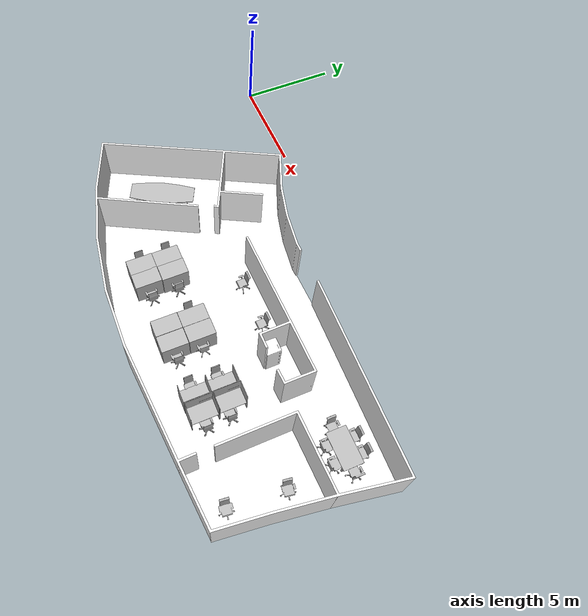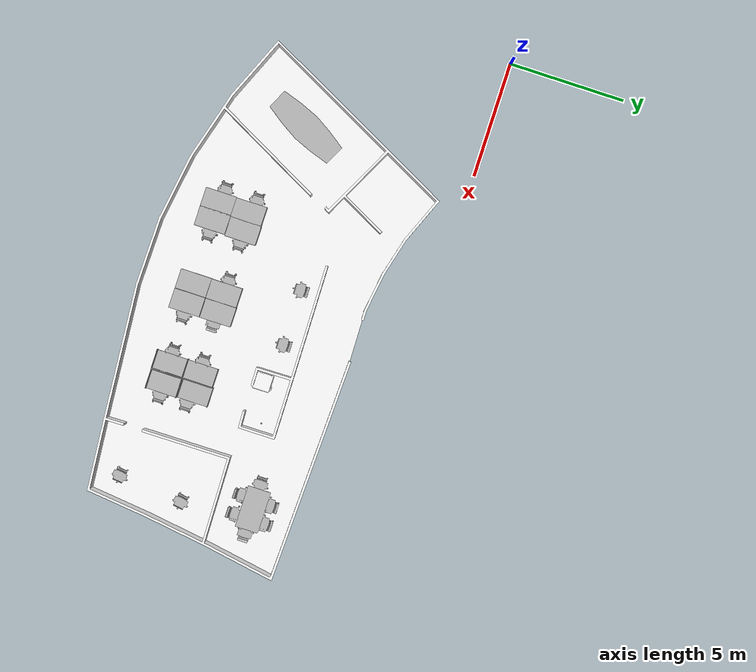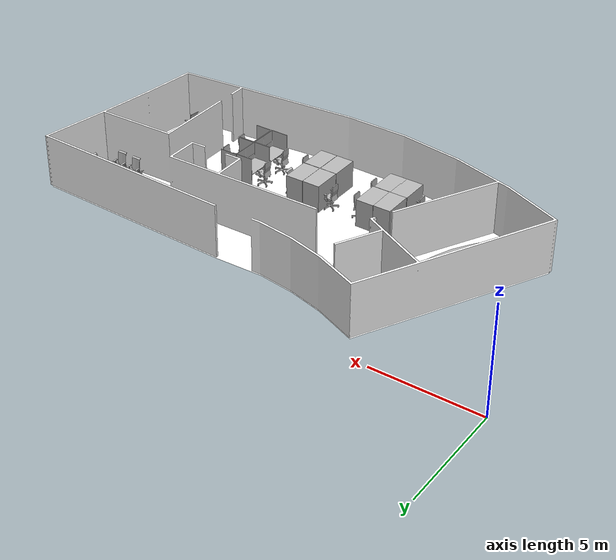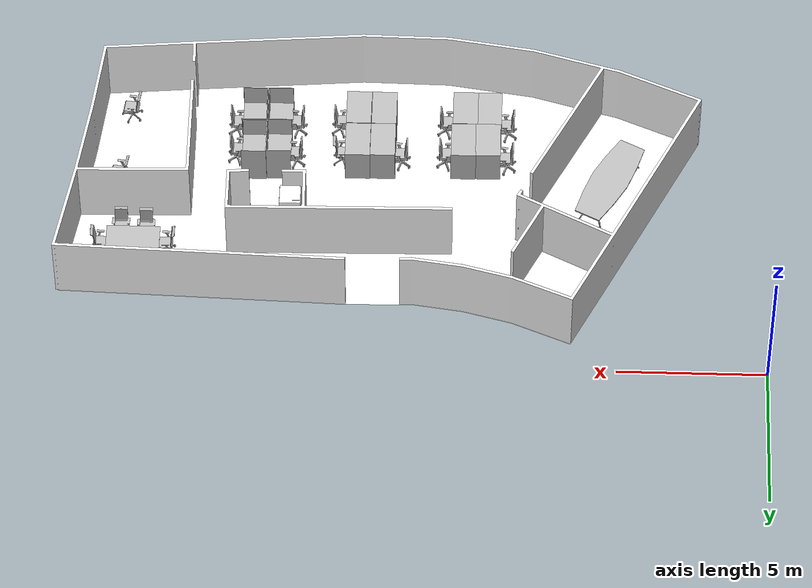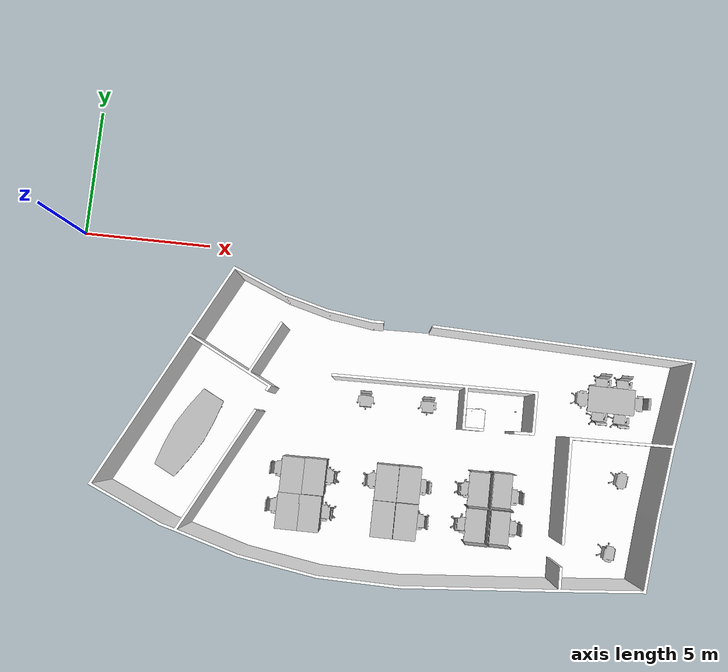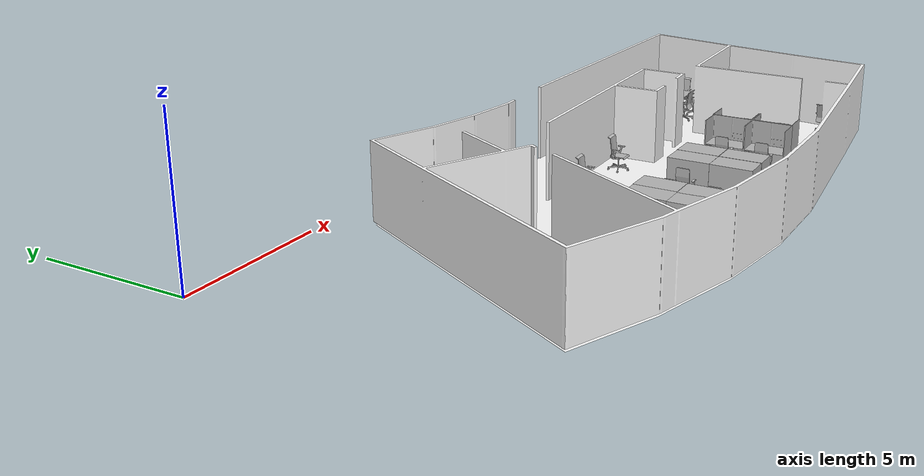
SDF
<sdf version="1.6">
 <world name="world">
  <scene><ambient>0.8 0.8 0.8 1.0</ambient><background>0 0 0</background><grid>false</grid></scene>
  <include><uri>model://sun</uri></include>
  <include>
   <name>Fridge</name>
   <uri>model://Fridge</uri>
   <pose>15.988145328136557 -5.750839262070037 0 0 0 1.5708</pose>
   <static>True</static>
  </include>
  <include>
   <name>OfficeChairGrey</name>
   <uri>model://OfficeChairGrey</uri>
   <pose>14.25575798385424 -5.546939351620108 0 0 0 0.0166</pose>
   <static>True</static>
  </include>
  <include>
   <name>SmallCubicle</name>
   <uri>model://SmallCubicle</uri>
   <pose>10.225911509914997 -8.526615785243605 0 0 0 1.5708</pose>
   <static>True</static>
  </include>
  <include>
   <name>SmallCubicle_2</name>
   <uri>model://SmallCubicle</uri>
   <pose>10.183296208528093 -9.890381619078704 0 0 0 1.5708</pose>
   <static>True</static>
  </include>
  <include>
   <name>SmallCubicle_3</name>
   <uri>model://SmallCubicle</uri>
   <pose>13.810743847321321 -9.831106223705028 0 0 0 1.5708</pose>
   <static>True</static>
  </include>
  <include>
   <name>SmallCubicle_4</name>
   <uri>model://SmallCubicle</uri>
   <pose>9.391493072925952 -8.541963727519024 0 0 0 -1.5708</pose>
   <static>True</static>
  </include>
  <include>
   <name>SmallCubicle_5</name>
   <uri>model://SmallCubicle</uri>
   <pose>9.36992299189023 -9.890178447200816 0 0 0 4.7124</pose>
   <static>True</static>
  </include>
  <include>
   <name>SmallCubicle_6</name>
   <uri>model://SmallCubicle</uri>
   <pose>12.9440464782329 -9.827406802428492 0 0 0 4.7124</pose>
   <static>True</static>
  </include>
  <include>
   <name>SmallCubicle_7</name>
   <uri>model://SmallCubicle</uri>
   <pose>12.955153207557416 -8.471810171183453 0 0 0 -1.5708</pose>
   <static>True</static>
  </include>
  <include>
   <name>SmallCubicle_8</name>
   <uri>model://SmallCubicle</uri>
   <pose>13.810743847321321 -8.460694976364024 0 0 0 1.5708</pose>
   <static>True</static>
  </include>
  <include>
   <name>BigCubicle</name>
   <uri>model://BigCubicle</uri>
   <pose>17.319691488336666 -8.342677511796122 0 0 0 1.5708</pose>
   <static>True</static>
  </include>
  <include>
   <name>BigCubicle_2</name>
   <uri>model://BigCubicle</uri>
   <pose>17.350328114423117 -9.715696131570017 0 0 0 1.5708</pose>
   <static>True</static>
  </include>
  <include>
   <name>BigCubicle_3</name>
   <uri>model://BigCubicle</uri>
   <pose>16.480625494640943 -9.730028214455997 0 0 0 -1.5708</pose>
   <static>True</static>
  </include>
  <include>
   <name>BigCubicle_4</name>
   <uri>model://BigCubicle</uri>
   <pose>16.48540849926621 -8.382482268872248 0 0 0 -1.5708</pose>
   <static>True</static>
  </include>
  <include>
   <name>OfficeChairGrey_2</name>
   <uri>model://OfficeChairGrey</uri>
   <pose>20.8759104529405 -3.9703171137182056 0 0 0 0.0</pose>
   <static>True</static>
  </include>
  <include>
   <name>OfficeChairGrey_3</name>
   <uri>model://OfficeChairGrey</uri>
   <pose>21.680132469578517 -3.9703171137182056 0 0 0 0.0</pose>
   <static>True</static>
  </include>
  <include>
   <name>OfficeChairGrey_4</name>
   <uri>model://OfficeChairGrey</uri>
   <pose>22.188062164297264 -4.512108788084869 0 0 0 -1.5708</pose>
   <static>True</static>
  </include>
  <include>
   <name>OfficeChairGrey_5</name>
   <uri>model://OfficeChairGrey</uri>
   <pose>21.66320147975456 -5.07083145227549 0 0 0 3.1416</pose>
   <static>True</static>
  </include>
  <include>
   <name>OfficeChairGrey_6</name>
   <uri>model://OfficeChairGrey</uri>
   <pose>20.816651988556647 -5.036969472627574 0 0 0 3.1416</pose>
   <static>True</static>
  </include>
  <include>
   <name>OfficeChairGrey_7</name>
   <uri>model://OfficeChairGrey</uri>
   <pose>20.257929324366025 -4.529039777908827 0 0 0 1.5708</pose>
   <static>True</static>
  </include>
  <include>
   <name>OfficeChairGrey_8</name>
   <uri>model://OfficeChairGrey</uri>
   <pose>14.205616857490586 -8.518074100877419 0 0 0 -1.5708</pose>
   <static>True</static>
  </include>
  <include>
   <name>OfficeChairGrey_9</name>
   <uri>model://OfficeChairGrey</uri>
   <pose>21.993355781321743 -7.517359481837455 0 0 0 1.419</pose>
   <static>True</static>
  </include>
  <include>
   <name>OfficeChairGrey_10</name>
   <uri>model://OfficeChairGrey</uri>
   <pose>21.731416437755286 -10.29278045422472 0 0 0 1.4599</pose>
   <static>True</static>
  </include>
  <include>
   <name>OfficeChairBlue</name>
   <uri>model://OfficeChairBlue</uri>
   <pose>8.867969936579339 -8.374719410037965 0 0 0 1.5708</pose>
   <static>True</static>
  </include>
  <include>
   <name>OfficeChairBlue_2</name>
   <uri>model://OfficeChairBlue</uri>
   <pose>8.853637853693357 -9.784393622780726 0 0 0 1.5708</pose>
   <static>True</static>
  </include>
  <include>
   <name>OfficeChairBlue_3</name>
   <uri>model://OfficeChairBlue</uri>
   <pose>10.702933682710107 -8.503742017991438 0 0 0 4.7124</pose>
   <static>True</static>
  </include>
  <include>
   <name>OfficeChairBlue_4</name>
   <uri>model://OfficeChairBlue</uri>
   <pose>10.698159143579753 -9.870411516581347 0 0 0 4.7124</pose>
   <static>True</static>
  </include>
  <include>
   <name>OfficeChairBlue_5</name>
   <uri>model://OfficeChairBlue</uri>
   <pose>12.456662539665526 -8.470294847594209 0 0 0 1.5708</pose>
   <static>True</static>
  </include>
  <include>
   <name>OfficeChairBlue_6</name>
   <uri>model://OfficeChairBlue</uri>
   <pose>14.310741373307545 -9.832181341558849 0 0 0 -1.5708</pose>
   <static>True</static>
  </include>
  <include>
   <name>OfficeChairBlue_7</name>
   <uri>model://OfficeChairBlue</uri>
   <pose>16.02188879085571 -9.773041394103762 0 0 0 1.5708</pose>
   <static>True</static>
  </include>
  <include>
   <name>OfficeChairBlue_8</name>
   <uri>model://OfficeChairBlue</uri>
   <pose>16.041003878366954 -8.435044526780727 0 0 0 1.5708</pose>
   <static>True</static>
  </include>
  <include>
   <name>OfficeChairBlue_9</name>
   <uri>model://OfficeChairBlue</uri>
   <pose>17.804290279077996 -8.544952047222951 0 0 0 -1.5708</pose>
   <static>True</static>
  </include>
  <include>
   <name>OfficeChairBlue_10</name>
   <uri>model://OfficeChairBlue</uri>
   <pose>17.83296291034487 -9.72525367532564 0 0 0 -1.5708</pose>
   <static>True</static>
  </include>
  <include>
   <name>OfficeChairGrey_11</name>
   <uri>model://OfficeChairGrey</uri>
   <pose>11.842888762062305 -5.564640701481056 0 0 0 0.016</pose>
   <static>True</static>
  </include>
  <include>
   <name>ConfTable</name>
   <uri>model://ConfTable</uri>
   <pose>5.248606845427052 -7.381911563245789 0 0 0 1.1017</pose>
   <static>True</static>
  </include>
  <include>
   <name>RecTable</name>
   <uri>model://RecTable</uri>
   <pose>21.23146123924362 -4.50364329317289 0 0 0 0.0</pose>
   <static>True</static>
  </include>
  <include>
   <name>coke_dispenser</name>
   <uri>model://TeleportDispenser</uri>
   <pose>17.704388973621732 -5.289418996397703 0 0 0 1.5708</pose>
   <static>True</static>
  </include>
  <include>
   <name>Coke</name>
   <uri>model://Coke</uri>
   <pose>17.704388973621732 -5.291535370125699 0 0 0 1.5708</pose>
   <static>False</static>
  </include>
  <include>
   <name>coke_ingestor</name>
   <uri>model://TeleportIngestor</uri>
   <pose>22.542656349675333 -7.610446063889577 0.805 0 0 1.5708</pose>
   <static>True</static>
  </include>
  <model name="main_door">
   <pose>13.131950836046645 -2.579487092649509 0.0 0 0 -3.120269390429785</pose>
   <link name="right">
    <pose>-0.473864332736097 0 1.11 0 0 0</pose>
    <visual name="right_visual">
     <geometry><box><size>0.937728665472194 0.03 2.2</size></box></geometry>
     <material><ambient>120 60 0 0.6</ambient><diffuse>120 60 0 0.6</diffuse></material>
    </visual>
    <collision name="right_collision">
     <geometry><box><size>0.937728665472194 0.03 2.2</size></box></geometry>
     <surface><contact><collide_bitmask>0x02</collide_bitmask></contact></surface>
    </collision>
    <inertial>
     <mass>50.0</mass>
     <inertia><ixx>20.17041666666667</ixx><iyy>23.83056270853443</iyy><izz>3.6676460418677586</izz></inertia>
    </inertial>
   </link>
   <joint name="right_joint" type="revolute">
    <parent>world</parent>
    <child>right</child>
    <axis><xyz>0 0 1</xyz><limit><lower>0</lower><upper>1.57</upper></limit></axis>
    <pose>-0.473864332736097 0 0 0 0 0</pose>
   </joint>
   <link name="left">
    <pose>0.473864332736097 0 1.11 0 0 0</pose>
    <visual name="left_visual">
     <geometry><box><size>0.937728665472194 0.03 2.2</size></box></geometry>
     <material><ambient>120 60 0 0.6</ambient><diffuse>120 60 0 0.6</diffuse></material>
    </visual>
    <collision name="left_collision">
     <geometry><box><size>0.937728665472194 0.03 2.2</size></box></geometry>
     <surface><contact><collide_bitmask>0x02</collide_bitmask></contact></surface>
    </collision>
    <inertial>
     <mass>50.0</mass>
     <inertia><ixx>20.17041666666667</ixx><iyy>23.83056270853443</iyy><izz>3.6676460418677586</izz></inertia>
    </inertial>
   </link>
   <joint name="left_joint" type="revolute">
    <parent>world</parent>
    <child>left</child>
    <axis><xyz>0 0 1</xyz><limit><lower>-1.57</lower><upper>0</upper></limit></axis>
    <pose>0.473864332736097 0 0 0 0 0</pose>
   </joint>
   <plugin filename="libdoor.so" name="door">
    <v_max_door>0.5</v_max_door>
    <a_max_door>0.3</a_max_door>
    <a_nom_door>0.15</a_nom_door>
    <dx_min_door>0.01</dx_min_door>
    <f_max_door>500.0</f_max_door>
    <door left_joint_name="left_joint" name="main_door" right_joint_name="right_joint" type="DoubleSwingDoor"/>
   </plugin>
  </model>
  <model name="coe_door">
   <pose>8.077686357313898 -5.898342045416362 0.0 0 0 1.1560010438234292</pose>
   <plugin filename="libdoor.so" name="door">
    <v_max_door>0.5</v_max_door>
    <a_max_door>0.3</a_max_door>
    <a_nom_door>0.15</a_nom_door>
    <dx_min_door>0.01</dx_min_door>
    <f_max_door>500.0</f_max_door>
    <door left_joint_name="left_joint" name="coe_door" right_joint_name="empty_joint" type="SwingDoor"/>
   </plugin>
   <link name="left">
    <pose>0 0 1.11 0 0 0</pose>
    <visual name="left_visual">
     <geometry><box><size>0.8766026166317483 0.03 2.2</size></box></geometry>
     <material><ambient>120 60 0 0.6</ambient><diffuse>120 60 0 0.6</diffuse></material>
    </visual>
    <collision name="left_collision">
     <geometry><box><size>0.8766026166317483 0.03 2.2</size></box></geometry>
     <surface><contact><collide_bitmask>0x02</collide_bitmask></contact></surface>
    </collision>
    <inertial>
     <mass>50.0</mass>
     <inertia><ixx>20.17041666666667</ixx><iyy>23.36846728119012</iyy><izz>3.20555061452345</izz></inertia>
    </inertial>
   </link>
   <joint name="left_joint" type="revolute">
    <parent>world</parent>
    <child>left</child>
    <axis><xyz>0 0 1</xyz><limit><lower>-1.57</lower><upper>0</upper></limit></axis>
    <pose>0.44330130831587417 0 0 0 0 0</pose>
   </joint>
  </model>
  <model name="hardware_door">
   <pose>19.450062912168402 -10.319158936370446 0.0 0 0 -1.5760607387686447</pose>
   <plugin filename="libdoor.so" name="door">
    <v_max_door>0.5</v_max_door>
    <a_max_door>0.3</a_max_door>
    <a_nom_door>0.15</a_nom_door>
    <dx_min_door>0.01</dx_min_door>
    <f_max_door>500.0</f_max_door>
    <door left_joint_name="left_joint" name="hardware_door" right_joint_name="empty_joint" type="SwingDoor"/>
   </plugin>
   <link name="left">
    <pose>0 0 1.11 0 0 0</pose>
    <visual name="left_visual">
     <geometry><box><size>0.8792617700206885 0.03 2.2</size></box></geometry>
     <material><ambient>120 60 0 0.6</ambient><diffuse>120 60 0 0.6</diffuse></material>
    </visual>
    <collision name="left_collision">
     <geometry><box><size>0.8792617700206885 0.03 2.2</size></box></geometry>
     <surface><contact><collide_bitmask>0x02</collide_bitmask></contact></surface>
    </collision>
    <inertial>
     <mass>50.0</mass>
     <inertia><ixx>20.17041666666667</ixx><iyy>23.387921917582982</iyy><izz>3.225005250916309</izz></inertia>
    </inertial>
   </link>
   <joint name="left_joint" type="revolute">
    <parent>world</parent>
    <child>left</child>
    <axis><xyz>0 0 1</xyz><limit><lower>-1.57</lower><upper>0</upper></limit></axis>
    <pose>0.44463088501034426 0 0 0 0 0</pose>
   </joint>
  </model>
  <include><name>building_L1</name><uri>model://building_L1</uri></include>
  <plugin filename="libcrowd_simulator.so" name="crowd_simulation">
   <behavior_file>behavior_file.xml</behavior_file>
   <scene_file>scene_file.xml</scene_file>
   <update_time_step>0.1</update_time_step>
   <model_type>
    <typename>human</typename>
    <animation>walk</animation>
    <animation_speed>0.2</animation_speed>
    <initial_pose>0 0 0 0 0 0</initial_pose>
    <filename>walk.dae</filename>
   </model_type>
   <model_type>
    <typename>random_human</typename>
    <animation>walk</animation>
    <animation_speed>0.2</animation_speed>
    <initial_pose>0 0 0 0 0 0</initial_pose>
    <filename>stand.dae</filename>
   </model_type>
   <external_agent>tinyRobot2</external_agent>
   <external_agent>tinyRobot1</external_agent>
  </plugin>
 </world>
</sdf>

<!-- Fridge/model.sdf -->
<sdf version="1.6">
  <model name="Fridge">
    <static>true</static>
    <link name="base_link">
      <visual name="visual">
        <geometry>
          <mesh>
            <uri>meshes/fridge.dae</uri>
          </mesh>
        </geometry>
        <material>
          <diffuse>1.0 1.0 1.0</diffuse>
          <specular>1.0 1.0 1.0</specular>
          <pbr>
            <metal>
              <albedo_map>materials/textures/Fridge_Albedo.jpg</albedo_map>
              <normal_map>materials/textures/Fridge_Normal.png</normal_map>
              <roughness_map>materials/textures/Fridge_Roughness.jpg</roughness_map>
              <metalness_map>materials/textures/Fridge_Metalness.jpg</metalness_map>
            </metal>
          </pbr>
        </material>
      </visual>
      <collision name="Box001">
        <pose>0.0 0.0 0.867923 0.0 0.0 0.0</pose>
        <geometry>
          <box>
            <size>0.734673 0.7239 1.73585</size>
          </box>
        </geometry>
      </collision>
    </link>
  </model>
</sdf>

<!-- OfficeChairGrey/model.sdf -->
<sdf version="1.6">
  <model name="OfficeChairGrey">
   <static>true</static>
    <link name="body">
      <pose>0 0 0 0 0 0</pose>

      <visual name="visual">
        <geometry>
          <mesh>
            <uri>model://OfficeChairGrey/meshes/OfficeChairGrey.obj</uri>
          </mesh>
        </geometry>
      </visual>

      <collision name="collision">
        <geometry>
          <mesh>
            <uri>model://OfficeChairGrey/meshes/OfficeChairGrey_Col.obj</uri>
          </mesh>
        </geometry>
      </collision>

    </link>
  </model>
</sdf>

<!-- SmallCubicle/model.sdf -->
<sdf version="1.6">
  <model name="SmallCubicle">
   <static>true</static>
    <link name="body">
      <pose>0 0 0 0 0 0</pose>

      <visual name="visual">
        <geometry>
          <mesh>
            <uri>model://SmallCubicle/meshes/SmallCubicle.obj</uri>
          </mesh>
        </geometry>
      </visual>

      <collision name="collision">
        <geometry>
          <mesh>
            <uri>model://SmallCubicle/meshes/SmallCubicle_Col.obj</uri>
          </mesh>
        </geometry>
      </collision>

    </link>
  </model>
</sdf>

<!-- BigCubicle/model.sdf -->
<sdf version="1.6">
  <model name="BigCubicle">
   <static>true</static>
    <link name="body">
      <pose>0 0 0 0 0 0</pose>

      <visual name="visual">
        <geometry>
          <mesh>
            <uri>model://BigCubicle/meshes/BigCubicle.obj</uri>
          </mesh>
        </geometry>
      </visual>

      <collision name="collision">
        <geometry>
          <mesh>
            <uri>model://BigCubicle/meshes/BigCubicle_Col.obj</uri>
          </mesh>
        </geometry>
      </collision>

    </link>
  </model>
</sdf>

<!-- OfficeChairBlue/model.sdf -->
<sdf version="1.6">
  <model name="OfficeChairBlue">
   <static>true</static>
    <link name="body">
      <pose>0 0 0 0 0 0</pose>

      <visual name="visual">
        <geometry>
          <mesh>
            <uri>model://OfficeChairBlue/meshes/OfficeChairBlue.obj</uri>
          </mesh>
        </geometry>
      </visual>

      <collision name="collision">
        <geometry>
          <mesh>
            <uri>model://OfficeChairBlue/meshes/OfficeChairBlue_Col.obj</uri>
          </mesh>
        </geometry>
      </collision>

    </link>
  </model>
</sdf>

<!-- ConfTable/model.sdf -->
<sdf version="1.6">
  <model name="ConfTable">
   <static>true</static>
    <link name="body">
      <pose>0 0 0 0 0 0</pose>

      <visual name="visual">
        <geometry>
          <mesh>
            <uri>model://ConfTable/meshes/ConfTable.obj</uri>
          </mesh>
        </geometry>
      </visual>

      <collision name="collision">
        <geometry>
          <mesh>
            <uri>model://ConfTable/meshes/ConfTable_Col.obj</uri>
          </mesh>
        </geometry>
      </collision>

    </link>
  </model>
</sdf>

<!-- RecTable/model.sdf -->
<sdf version="1.6">
  <model name="RecTable">
   <static>true</static>
    <link name="body">
      <pose>0 0 0 0 0 0</pose>

      <visual name="visual">
        <geometry>
          <mesh>
            <uri>model://RecTable/meshes/RecTable.obj</uri>
          </mesh>
        </geometry>
      </visual>

      <collision name="collision">
        <geometry>
          <mesh>
            <uri>model://RecTable/meshes/RecTable_Col.obj</uri>
          </mesh>
        </geometry>
      </collision>

    </link>
  </model>
</sdf>

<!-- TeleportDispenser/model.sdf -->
<sdf version="1.6">
  <model name="TeleportDispenser">
    <pose>0.0 0.0 0.0 0.0 0.0 0.0</pose>
    <static>true</static>

    <link name="visual_link">
      <pose>0.0 0.0 0.05 0.0 0.0 0.0</pose>
      <visual name="visual">
        <geometry>
          <box>
            <size>0.1 0.1 0.1</size>
          </box>
        </geometry>
        <material>
          <ambient>128 192 210 0.1</ambient>
          <diffuse>128 192 210 0.1</diffuse>
        </material>
      </visual>
    </link>

    <plugin name="teleport_dispenser" filename="libteleport_dispenser.so">
    </plugin>

  </model>
</sdf>

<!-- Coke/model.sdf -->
<sdf version="1.6">
  <model name='Coke'>
    <static>true</static>
    <link name="body">
      <pose>0 0 0 0 0 0</pose>

        <visual name="visual">
          <geometry>
            <mesh><uri>model://Coke/meshes/coke.obj</uri></mesh>
          </geometry>
        </visual>

        <collision name="collision">
          <geometry>
            <mesh><uri>model://Coke/meshes/coke.obj</uri></mesh>
          </geometry>
        </collision>

        <!-- TODO: Replace with accurate values of mass and inertia -->
        <inertial>
          <mass>1.0</mass>
          <inertia>
            <ixx>0.003366666666666667</ixx>
            <iyy>0.0008666666666666667</iyy>
            <izz>0.0041666666666666675</izz>
          </inertia>
        </inertial>

    </link>

  </model>
</sdf>

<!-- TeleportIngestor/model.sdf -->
<sdf version="1.6">
  <model name="TeleportIngestor">
    <pose>0.0 0.0 0.0 0.0 0.0 0.0</pose>
    <static>true</static>

    <link name="visual_link">
      <pose>0.0 0.0 0.05 0.0 0.0 0.0</pose>
      <visual name="visual">
        <geometry>
          <box>
            <size>0.1 0.1 0.1</size>
          </box>
        </geometry>
        <material>
          <ambient>128 192 210 0.1</ambient>
          <diffuse>128 192 210 0.1</diffuse>
        </material>
      </visual>
    </link>

    <plugin name="teleport_ingestor" filename="libteleport_ingestor.so">
    </plugin>

  </model>
</sdf>

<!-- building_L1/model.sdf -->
<sdf version="1.7">
  <model name="building_L1">
    <static>true</static>
    <link name="floor_1">
      <visual name="visual">
        <geometry>
          <mesh>
            <uri>model://building_L1/meshes/floor_1.obj</uri>
          </mesh>
        </geometry>
        <material>
          <diffuse>1.0 1.0 1.0 1.0</diffuse>
          <specular>0.1 0.1 0.1 1.0</specular>
          <pbr>
            <metal>
              <metalness>0.0</metalness>
              <albedo_map>model://building_L1/meshes/blue_linoleum.png</albedo_map>
            </metal>
          </pbr>
        </material>
      </visual>
      <collision name="collision">
        <geometry>
          <mesh>
            <uri>model://building_L1/meshes/floor_1.obj</uri>
          </mesh>
        </geometry>
        <surface>
          <contact>
            <collide_bitmask>0x01</collide_bitmask>
          </contact>
        </surface>
      </collision>
    </link>
    <link name="wall_1">
      <visual name="wall_1">
        <geometry>
          <mesh>
            <uri>model://building_L1/meshes/wall_1.obj</uri>
          </mesh>
        </geometry>
        <material>
          <diffuse>1.0 1.0 1.0 1.0</diffuse>
          <specular>0.1 0.1 0.1 1.0</specular>
          <pbr>
            <metal>
              <metalness>0.0</metalness>
              <albedo_map>model://building_L1/meshes/default.png</albedo_map>
            </metal>
          </pbr>
        </material>
      </visual>
      <collision name="collision">
        <geometry>
          <mesh>
            <uri>model://building_L1/meshes/wall_1.obj</uri>
          </mesh>
        </geometry>
        <surface>
          <contact>
            <collide_bitmask>0x01</collide_bitmask>
          </contact>
        </surface>
      </collision>
    </link>
  </model>
</sdf>
